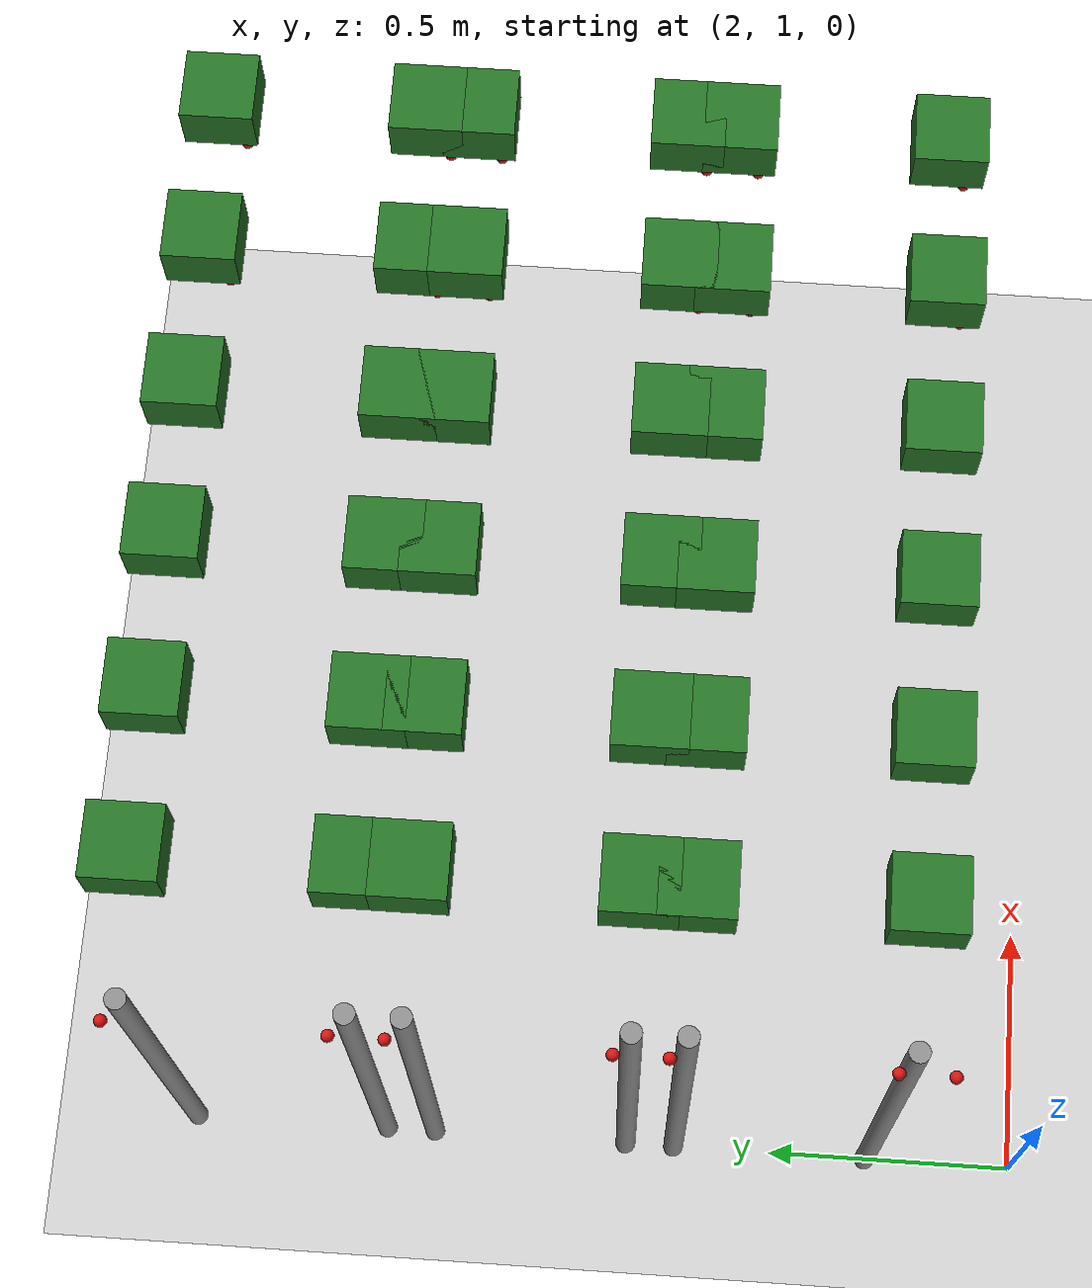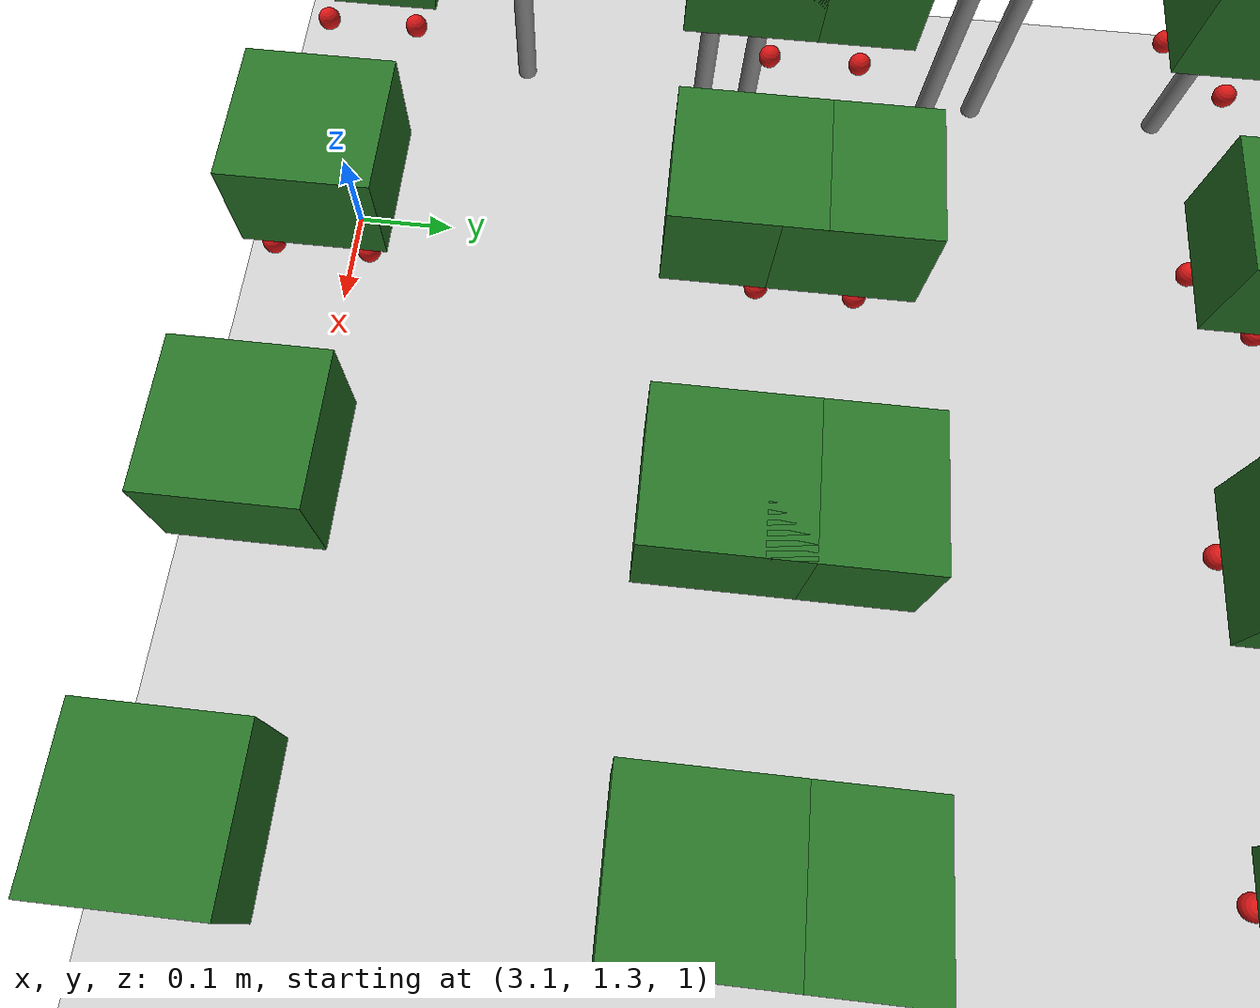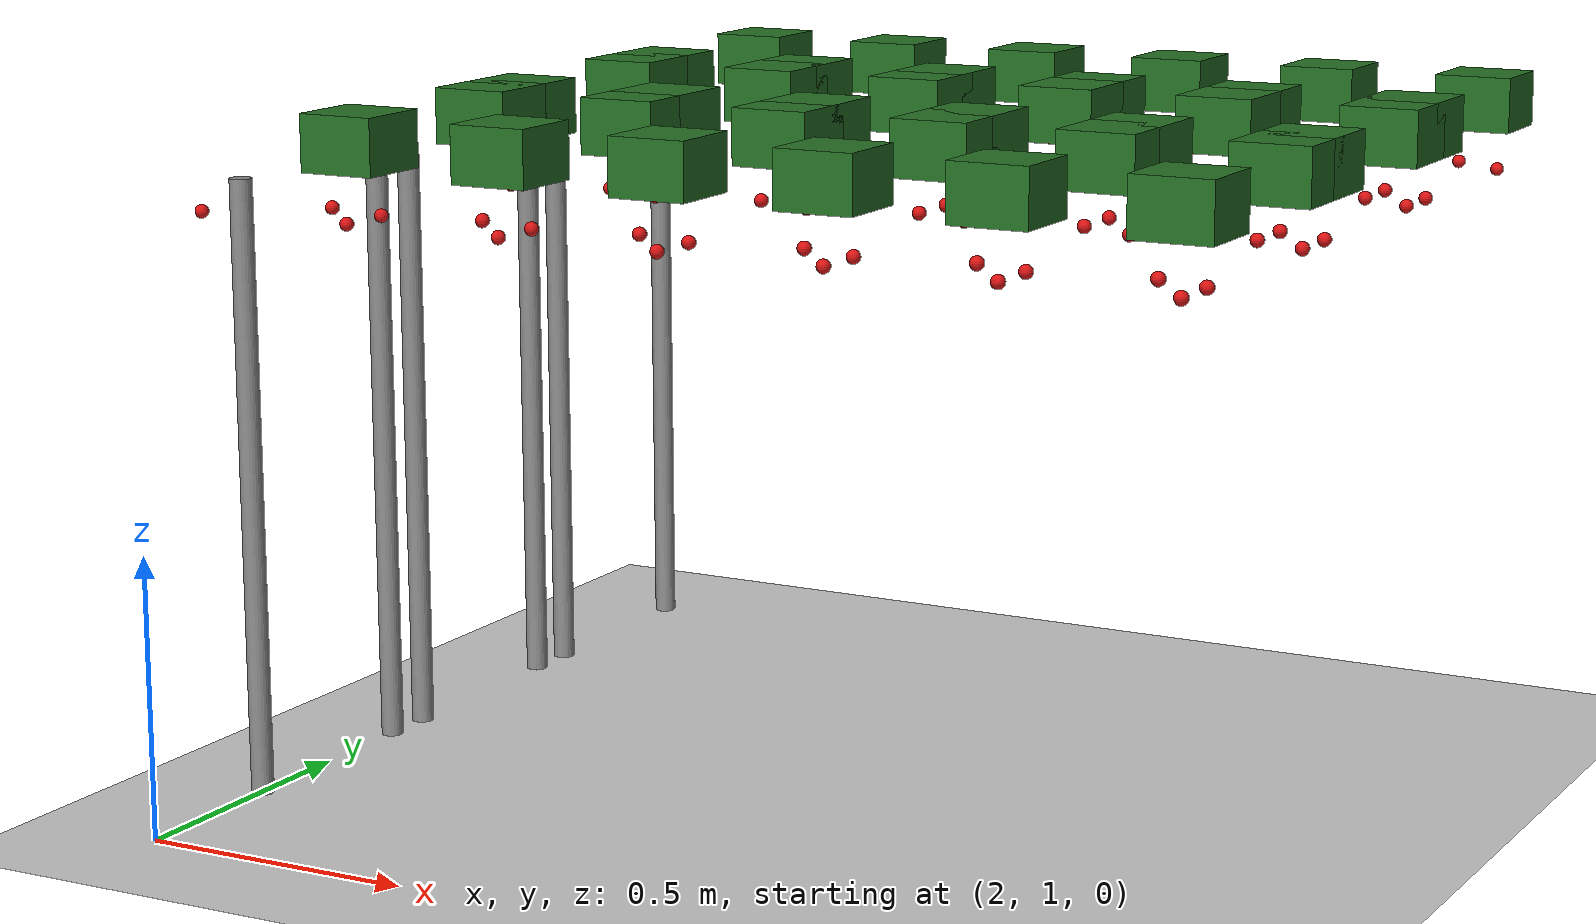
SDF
<sdf version="1.7">
 <world name="irish_polytunnel">
  <include><uri>model://sun</uri></include>
  <include><uri>model://ground_plane</uri></include>
  <model name="row2_L_plant6_berry_1">
   <static>true</static>
   <pose>1.970 1.230 1.050 0 0 0</pose>
   <link name="link">
    <visual name="visual">
     <geometry><sphere><radius>0.012</radius></sphere></geometry>
     <material><ambient>0.75 0.05 0.05 1</ambient><diffuse>0.85 0.08 0.08 1</diffuse></material>
    </visual>
   </link>
  </model>
  <model name="row2_L_plant7_berry_1">
   <static>true</static>
   <pose>2.270 1.230 1.050 0 0 0</pose>
   <link name="link">
    <visual name="visual">
     <geometry><sphere><radius>0.012</radius></sphere></geometry>
     <material><ambient>0.75 0.05 0.05 1</ambient><diffuse>0.85 0.08 0.08 1</diffuse></material>
    </visual>
   </link>
  </model>
  <model name="row2_L_plant8_berry_1">
   <static>true</static>
   <pose>2.570 1.230 1.050 0 0 0</pose>
   <link name="link">
    <visual name="visual">
     <geometry><sphere><radius>0.012</radius></sphere></geometry>
     <material><ambient>0.75 0.05 0.05 1</ambient><diffuse>0.85 0.08 0.08 1</diffuse></material>
    </visual>
   </link>
  </model>
  <model name="row2_L_plant9_berry_1">
   <static>true</static>
   <pose>2.870 1.230 1.050 0 0 0</pose>
   <link name="link">
    <visual name="visual">
     <geometry><sphere><radius>0.012</radius></sphere></geometry>
     <material><ambient>0.75 0.05 0.05 1</ambient><diffuse>0.85 0.08 0.08 1</diffuse></material>
    </visual>
   </link>
  </model>
  <model name="row2_L_plant10_berry_1">
   <static>true</static>
   <pose>3.170 1.230 1.050 0 0 0</pose>
   <link name="link">
    <visual name="visual">
     <geometry><sphere><radius>0.012</radius></sphere></geometry>
     <material><ambient>0.75 0.05 0.05 1</ambient><diffuse>0.85 0.08 0.08 1</diffuse></material>
    </visual>
   </link>
  </model>
  <model name="row2_L_plant11_berry_1">
   <static>true</static>
   <pose>3.470 1.230 1.050 0 0 0</pose>
   <link name="link">
    <visual name="visual">
     <geometry><sphere><radius>0.012</radius></sphere></geometry>
     <material><ambient>0.75 0.05 0.05 1</ambient><diffuse>0.85 0.08 0.08 1</diffuse></material>
    </visual>
   </link>
  </model>
  <model name="row2_L_plant12_berry_1">
   <static>true</static>
   <pose>3.770 1.230 1.050 0 0 0</pose>
   <link name="link">
    <visual name="visual">
     <geometry><sphere><radius>0.012</radius></sphere></geometry>
     <material><ambient>0.75 0.05 0.05 1</ambient><diffuse>0.85 0.08 0.08 1</diffuse></material>
    </visual>
   </link>
  </model>
  <model name="row3_L_post1">
   <static>true</static>
   <pose>2.000 1.700 0.550 0 0 0</pose>
   <link name="link">
    <collision name="collision">
     <geometry><cylinder><radius>0.02</radius><length>1.100</length></cylinder></geometry>
    </collision>
    <visual name="visual">
     <geometry><cylinder><radius>0.02</radius><length>1.100</length></cylinder></geometry>
     <material><ambient>0.5 0.5 0.5 1</ambient><diffuse>0.55 0.55 0.55 1</diffuse></material>
    </visual>
   </link>
  </model>
  <model name="row3_L_plant6_berry_1">
   <static>true</static>
   <pose>1.970 1.730 1.050 0 0 0</pose>
   <link name="link">
    <visual name="visual">
     <geometry><sphere><radius>0.012</radius></sphere></geometry>
     <material><ambient>0.75 0.05 0.05 1</ambient><diffuse>0.85 0.08 0.08 1</diffuse></material>
    </visual>
   </link>
  </model>
  <model name="row3_L_plant7_foliage">
   <static>true</static>
   <pose>2.250 1.700 1.180 0 0 0</pose>
   <link name="link">
    <visual name="visual">
     <geometry><box><size>0.14 0.14 0.10</size></box></geometry>
     <material><ambient>0.10 0.35 0.10 1</ambient><diffuse>0.15 0.45 0.15 1</diffuse></material>
    </visual>
   </link>
  </model>
  <model name="row3_L_plant7_berry_0">
   <static>true</static>
   <pose>2.220 1.660 1.070 0 0 0</pose>
   <link name="link">
    <visual name="visual">
     <geometry><sphere><radius>0.012</radius></sphere></geometry>
     <material><ambient>0.75 0.05 0.05 1</ambient><diffuse>0.85 0.08 0.08 1</diffuse></material>
    </visual>
   </link>
  </model>
  <model name="row3_L_plant7_berry_1">
   <static>true</static>
   <pose>2.270 1.730 1.050 0 0 0</pose>
   <link name="link">
    <visual name="visual">
     <geometry><sphere><radius>0.012</radius></sphere></geometry>
     <material><ambient>0.75 0.05 0.05 1</ambient><diffuse>0.85 0.08 0.08 1</diffuse></material>
    </visual>
   </link>
  </model>
  <model name="row3_L_plant8_foliage">
   <static>true</static>
   <pose>2.550 1.700 1.180 0 0 0</pose>
   <link name="link">
    <visual name="visual">
     <geometry><box><size>0.14 0.14 0.10</size></box></geometry>
     <material><ambient>0.10 0.35 0.10 1</ambient><diffuse>0.15 0.45 0.15 1</diffuse></material>
    </visual>
   </link>
  </model>
  <model name="row3_L_plant8_berry_0">
   <static>true</static>
   <pose>2.520 1.660 1.070 0 0 0</pose>
   <link name="link">
    <visual name="visual">
     <geometry><sphere><radius>0.012</radius></sphere></geometry>
     <material><ambient>0.75 0.05 0.05 1</ambient><diffuse>0.85 0.08 0.08 1</diffuse></material>
    </visual>
   </link>
  </model>
  <model name="row3_L_plant8_berry_1">
   <static>true</static>
   <pose>2.570 1.730 1.050 0 0 0</pose>
   <link name="link">
    <visual name="visual">
     <geometry><sphere><radius>0.012</radius></sphere></geometry>
     <material><ambient>0.75 0.05 0.05 1</ambient><diffuse>0.85 0.08 0.08 1</diffuse></material>
    </visual>
   </link>
  </model>
  <model name="row3_L_plant9_foliage">
   <static>true</static>
   <pose>2.850 1.700 1.180 0 0 0</pose>
   <link name="link">
    <visual name="visual">
     <geometry><box><size>0.14 0.14 0.10</size></box></geometry>
     <material><ambient>0.10 0.35 0.10 1</ambient><diffuse>0.15 0.45 0.15 1</diffuse></material>
    </visual>
   </link>
  </model>
  <model name="row3_L_plant9_berry_0">
   <static>true</static>
   <pose>2.820 1.660 1.070 0 0 0</pose>
   <link name="link">
    <visual name="visual">
     <geometry><sphere><radius>0.012</radius></sphere></geometry>
     <material><ambient>0.75 0.05 0.05 1</ambient><diffuse>0.85 0.08 0.08 1</diffuse></material>
    </visual>
   </link>
  </model>
  <model name="row3_L_plant9_berry_1">
   <static>true</static>
   <pose>2.870 1.730 1.050 0 0 0</pose>
   <link name="link">
    <visual name="visual">
     <geometry><sphere><radius>0.012</radius></sphere></geometry>
     <material><ambient>0.75 0.05 0.05 1</ambient><diffuse>0.85 0.08 0.08 1</diffuse></material>
    </visual>
   </link>
  </model>
  <model name="row3_L_plant10_foliage">
   <static>true</static>
   <pose>3.150 1.700 1.180 0 0 0</pose>
   <link name="link">
    <visual name="visual">
     <geometry><box><size>0.14 0.14 0.10</size></box></geometry>
     <material><ambient>0.10 0.35 0.10 1</ambient><diffuse>0.15 0.45 0.15 1</diffuse></material>
    </visual>
   </link>
  </model>
  <model name="row3_L_plant10_berry_0">
   <static>true</static>
   <pose>3.120 1.660 1.070 0 0 0</pose>
   <link name="link">
    <visual name="visual">
     <geometry><sphere><radius>0.012</radius></sphere></geometry>
     <material><ambient>0.75 0.05 0.05 1</ambient><diffuse>0.85 0.08 0.08 1</diffuse></material>
    </visual>
   </link>
  </model>
  <model name="row3_L_plant10_berry_1">
   <static>true</static>
   <pose>3.170 1.730 1.050 0 0 0</pose>
   <link name="link">
    <visual name="visual">
     <geometry><sphere><radius>0.012</radius></sphere></geometry>
     <material><ambient>0.75 0.05 0.05 1</ambient><diffuse>0.85 0.08 0.08 1</diffuse></material>
    </visual>
   </link>
  </model>
  <model name="row3_L_plant11_foliage">
   <static>true</static>
   <pose>3.450 1.700 1.180 0 0 0</pose>
   <link name="link">
    <visual name="visual">
     <geometry><box><size>0.14 0.14 0.10</size></box></geometry>
     <material><ambient>0.10 0.35 0.10 1</ambient><diffuse>0.15 0.45 0.15 1</diffuse></material>
    </visual>
   </link>
  </model>
  <model name="row3_L_plant11_berry_0">
   <static>true</static>
   <pose>3.420 1.660 1.070 0 0 0</pose>
   <link name="link">
    <visual name="visual">
     <geometry><sphere><radius>0.012</radius></sphere></geometry>
     <material><ambient>0.75 0.05 0.05 1</ambient><diffuse>0.85 0.08 0.08 1</diffuse></material>
    </visual>
   </link>
  </model>
  <model name="row3_L_plant11_berry_1">
   <static>true</static>
   <pose>3.470 1.730 1.050 0 0 0</pose>
   <link name="link">
    <visual name="visual">
     <geometry><sphere><radius>0.012</radius></sphere></geometry>
     <material><ambient>0.75 0.05 0.05 1</ambient><diffuse>0.85 0.08 0.08 1</diffuse></material>
    </visual>
   </link>
  </model>
  <model name="row3_L_plant12_foliage">
   <static>true</static>
   <pose>3.750 1.700 1.180 0 0 0</pose>
   <link name="link">
    <visual name="visual">
     <geometry><box><size>0.14 0.14 0.10</size></box></geometry>
     <material><ambient>0.10 0.35 0.10 1</ambient><diffuse>0.15 0.45 0.15 1</diffuse></material>
    </visual>
   </link>
  </model>
  <model name="row3_L_plant12_berry_0">
   <static>true</static>
   <pose>3.720 1.660 1.070 0 0 0</pose>
   <link name="link">
    <visual name="visual">
     <geometry><sphere><radius>0.012</radius></sphere></geometry>
     <material><ambient>0.75 0.05 0.05 1</ambient><diffuse>0.85 0.08 0.08 1</diffuse></material>
    </visual>
   </link>
  </model>
  <model name="row3_L_plant12_berry_1">
   <static>true</static>
   <pose>3.770 1.730 1.050 0 0 0</pose>
   <link name="link">
    <visual name="visual">
     <geometry><sphere><radius>0.012</radius></sphere></geometry>
     <material><ambient>0.75 0.05 0.05 1</ambient><diffuse>0.85 0.08 0.08 1</diffuse></material>
    </visual>
   </link>
  </model>
  <model name="row3_R_post1">
   <static>true</static>
   <pose>2.000 1.300 0.550 0 0 0</pose>
   <link name="link">
    <collision name="collision">
     <geometry><cylinder><radius>0.02</radius><length>1.100</length></cylinder></geometry>
    </collision>
    <visual name="visual">
     <geometry><cylinder><radius>0.02</radius><length>1.100</length></cylinder></geometry>
     <material><ambient>0.5 0.5 0.5 1</ambient><diffuse>0.55 0.55 0.55 1</diffuse></material>
    </visual>
   </link>
  </model>
  <model name="row3_R_plant6_berry_1">
   <static>true</static>
   <pose>1.970 1.330 1.050 0 0 0</pose>
   <link name="link">
    <visual name="visual">
     <geometry><sphere><radius>0.012</radius></sphere></geometry>
     <material><ambient>0.75 0.05 0.05 1</ambient><diffuse>0.85 0.08 0.08 1</diffuse></material>
    </visual>
   </link>
  </model>
  <model name="row3_R_plant7_foliage">
   <static>true</static>
   <pose>2.250 1.300 1.180 0 0 0</pose>
   <link name="link">
    <visual name="visual">
     <geometry><box><size>0.14 0.14 0.10</size></box></geometry>
     <material><ambient>0.10 0.35 0.10 1</ambient><diffuse>0.15 0.45 0.15 1</diffuse></material>
    </visual>
   </link>
  </model>
  <model name="row3_R_plant7_berry_0">
   <static>true</static>
   <pose>2.220 1.260 1.070 0 0 0</pose>
   <link name="link">
    <visual name="visual">
     <geometry><sphere><radius>0.012</radius></sphere></geometry>
     <material><ambient>0.75 0.05 0.05 1</ambient><diffuse>0.85 0.08 0.08 1</diffuse></material>
    </visual>
   </link>
  </model>
  <model name="row3_R_plant7_berry_1">
   <static>true</static>
   <pose>2.270 1.330 1.050 0 0 0</pose>
   <link name="link">
    <visual name="visual">
     <geometry><sphere><radius>0.012</radius></sphere></geometry>
     <material><ambient>0.75 0.05 0.05 1</ambient><diffuse>0.85 0.08 0.08 1</diffuse></material>
    </visual>
   </link>
  </model>
  <model name="row3_R_plant8_foliage">
   <static>true</static>
   <pose>2.550 1.300 1.180 0 0 0</pose>
   <link name="link">
    <visual name="visual">
     <geometry><box><size>0.14 0.14 0.10</size></box></geometry>
     <material><ambient>0.10 0.35 0.10 1</ambient><diffuse>0.15 0.45 0.15 1</diffuse></material>
    </visual>
   </link>
  </model>
  <model name="row3_R_plant8_berry_0">
   <static>true</static>
   <pose>2.520 1.260 1.070 0 0 0</pose>
   <link name="link">
    <visual name="visual">
     <geometry><sphere><radius>0.012</radius></sphere></geometry>
     <material><ambient>0.75 0.05 0.05 1</ambient><diffuse>0.85 0.08 0.08 1</diffuse></material>
    </visual>
   </link>
  </model>
  <model name="row3_R_plant8_berry_1">
   <static>true</static>
   <pose>2.570 1.330 1.050 0 0 0</pose>
   <link name="link">
    <visual name="visual">
     <geometry><sphere><radius>0.012</radius></sphere></geometry>
     <material><ambient>0.75 0.05 0.05 1</ambient><diffuse>0.85 0.08 0.08 1</diffuse></material>
    </visual>
   </link>
  </model>
  <model name="row3_R_plant9_foliage">
   <static>true</static>
   <pose>2.850 1.300 1.180 0 0 0</pose>
   <link name="link">
    <visual name="visual">
     <geometry><box><size>0.14 0.14 0.10</size></box></geometry>
     <material><ambient>0.10 0.35 0.10 1</ambient><diffuse>0.15 0.45 0.15 1</diffuse></material>
    </visual>
   </link>
  </model>
  <model name="row3_R_plant9_berry_0">
   <static>true</static>
   <pose>2.820 1.260 1.070 0 0 0</pose>
   <link name="link">
    <visual name="visual">
     <geometry><sphere><radius>0.012</radius></sphere></geometry>
     <material><ambient>0.75 0.05 0.05 1</ambient><diffuse>0.85 0.08 0.08 1</diffuse></material>
    </visual>
   </link>
  </model>
  <model name="row3_R_plant9_berry_1">
   <static>true</static>
   <pose>2.870 1.330 1.050 0 0 0</pose>
   <link name="link">
    <visual name="visual">
     <geometry><sphere><radius>0.012</radius></sphere></geometry>
     <material><ambient>0.75 0.05 0.05 1</ambient><diffuse>0.85 0.08 0.08 1</diffuse></material>
    </visual>
   </link>
  </model>
  <model name="row3_R_plant10_foliage">
   <static>true</static>
   <pose>3.150 1.300 1.180 0 0 0</pose>
   <link name="link">
    <visual name="visual">
     <geometry><box><size>0.14 0.14 0.10</size></box></geometry>
     <material><ambient>0.10 0.35 0.10 1</ambient><diffuse>0.15 0.45 0.15 1</diffuse></material>
    </visual>
   </link>
  </model>
  <model name="row3_R_plant10_berry_0">
   <static>true</static>
   <pose>3.120 1.260 1.070 0 0 0</pose>
   <link name="link">
    <visual name="visual">
     <geometry><sphere><radius>0.012</radius></sphere></geometry>
     <material><ambient>0.75 0.05 0.05 1</ambient><diffuse>0.85 0.08 0.08 1</diffuse></material>
    </visual>
   </link>
  </model>
  <model name="row3_R_plant10_berry_1">
   <static>true</static>
   <pose>3.170 1.330 1.050 0 0 0</pose>
   <link name="link">
    <visual name="visual">
     <geometry><sphere><radius>0.012</radius></sphere></geometry>
     <material><ambient>0.75 0.05 0.05 1</ambient><diffuse>0.85 0.08 0.08 1</diffuse></material>
    </visual>
   </link>
  </model>
  <model name="row3_R_plant11_foliage">
   <static>true</static>
   <pose>3.450 1.300 1.180 0 0 0</pose>
   <link name="link">
    <visual name="visual">
     <geometry><box><size>0.14 0.14 0.10</size></box></geometry>
     <material><ambient>0.10 0.35 0.10 1</ambient><diffuse>0.15 0.45 0.15 1</diffuse></material>
    </visual>
   </link>
  </model>
  <model name="row3_R_plant11_berry_0">
   <static>true</static>
   <pose>3.420 1.260 1.070 0 0 0</pose>
   <link name="link">
    <visual name="visual">
     <geometry><sphere><radius>0.012</radius></sphere></geometry>
     <material><ambient>0.75 0.05 0.05 1</ambient><diffuse>0.85 0.08 0.08 1</diffuse></material>
    </visual>
   </link>
  </model>
  <model name="row3_R_plant11_berry_1">
   <static>true</static>
   <pose>3.470 1.330 1.050 0 0 0</pose>
   <link name="link">
    <visual name="visual">
     <geometry><sphere><radius>0.012</radius></sphere></geometry>
     <material><ambient>0.75 0.05 0.05 1</ambient><diffuse>0.85 0.08 0.08 1</diffuse></material>
    </visual>
   </link>
  </model>
  <model name="row3_R_plant12_foliage">
   <static>true</static>
   <pose>3.750 1.300 1.180 0 0 0</pose>
   <link name="link">
    <visual name="visual">
     <geometry><box><size>0.14 0.14 0.10</size></box></geometry>
     <material><ambient>0.10 0.35 0.10 1</ambient><diffuse>0.15 0.45 0.15 1</diffuse></material>
    </visual>
   </link>
  </model>
  <model name="row3_R_plant12_berry_0">
   <static>true</static>
   <pose>3.720 1.260 1.070 0 0 0</pose>
   <link name="link">
    <visual name="visual">
     <geometry><sphere><radius>0.012</radius></sphere></geometry>
     <material><ambient>0.75 0.05 0.05 1</ambient><diffuse>0.85 0.08 0.08 1</diffuse></material>
    </visual>
   </link>
  </model>
  <model name="row3_R_plant12_berry_1">
   <static>true</static>
   <pose>3.770 1.330 1.050 0 0 0</pose>
   <link name="link">
    <visual name="visual">
     <geometry><sphere><radius>0.012</radius></sphere></geometry>
     <material><ambient>0.75 0.05 0.05 1</ambient><diffuse>0.85 0.08 0.08 1</diffuse></material>
    </visual>
   </link>
  </model>
  <model name="row4_L_post1">
   <static>true</static>
   <pose>2.000 2.200 0.550 0 0 0</pose>
   <link name="link">
    <collision name="collision">
     <geometry><cylinder><radius>0.02</radius><length>1.100</length></cylinder></geometry>
    </collision>
    <visual name="visual">
     <geometry><cylinder><radius>0.02</radius><length>1.100</length></cylinder></geometry>
     <material><ambient>0.5 0.5 0.5 1</ambient><diffuse>0.55 0.55 0.55 1</diffuse></material>
    </visual>
   </link>
  </model>
  <model name="row4_L_plant6_berry_1">
   <static>true</static>
   <pose>1.970 2.230 1.050 0 0 0</pose>
   <link name="link">
    <visual name="visual">
     <geometry><sphere><radius>0.012</radius></sphere></geometry>
     <material><ambient>0.75 0.05 0.05 1</ambient><diffuse>0.85 0.08 0.08 1</diffuse></material>
    </visual>
   </link>
  </model>
  <model name="row4_L_plant7_foliage">
   <static>true</static>
   <pose>2.250 2.200 1.180 0 0 0</pose>
   <link name="link">
    <visual name="visual">
     <geometry><box><size>0.14 0.14 0.10</size></box></geometry>
     <material><ambient>0.10 0.35 0.10 1</ambient><diffuse>0.15 0.45 0.15 1</diffuse></material>
    </visual>
   </link>
  </model>
  <model name="row4_L_plant7_berry_0">
   <static>true</static>
   <pose>2.220 2.160 1.070 0 0 0</pose>
   <link name="link">
    <visual name="visual">
     <geometry><sphere><radius>0.012</radius></sphere></geometry>
     <material><ambient>0.75 0.05 0.05 1</ambient><diffuse>0.85 0.08 0.08 1</diffuse></material>
    </visual>
   </link>
  </model>
  <model name="row4_L_plant7_berry_1">
   <static>true</static>
   <pose>2.270 2.230 1.050 0 0 0</pose>
   <link name="link">
    <visual name="visual">
     <geometry><sphere><radius>0.012</radius></sphere></geometry>
     <material><ambient>0.75 0.05 0.05 1</ambient><diffuse>0.85 0.08 0.08 1</diffuse></material>
    </visual>
   </link>
  </model>
  <model name="row4_L_plant8_foliage">
   <static>true</static>
   <pose>2.550 2.200 1.180 0 0 0</pose>
   <link name="link">
    <visual name="visual">
     <geometry><box><size>0.14 0.14 0.10</size></box></geometry>
     <material><ambient>0.10 0.35 0.10 1</ambient><diffuse>0.15 0.45 0.15 1</diffuse></material>
    </visual>
   </link>
  </model>
  <model name="row4_L_plant8_berry_0">
   <static>true</static>
   <pose>2.520 2.160 1.070 0 0 0</pose>
   <link name="link">
    <visual name="visual">
     <geometry><sphere><radius>0.012</radius></sphere></geometry>
     <material><ambient>0.75 0.05 0.05 1</ambient><diffuse>0.85 0.08 0.08 1</diffuse></material>
    </visual>
   </link>
  </model>
  <model name="row4_L_plant8_berry_1">
   <static>true</static>
   <pose>2.570 2.230 1.050 0 0 0</pose>
   <link name="link">
    <visual name="visual">
     <geometry><sphere><radius>0.012</radius></sphere></geometry>
     <material><ambient>0.75 0.05 0.05 1</ambient><diffuse>0.85 0.08 0.08 1</diffuse></material>
    </visual>
   </link>
  </model>
  <model name="row4_L_plant9_foliage">
   <static>true</static>
   <pose>2.850 2.200 1.180 0 0 0</pose>
   <link name="link">
    <visual name="visual">
     <geometry><box><size>0.14 0.14 0.10</size></box></geometry>
     <material><ambient>0.10 0.35 0.10 1</ambient><diffuse>0.15 0.45 0.15 1</diffuse></material>
    </visual>
   </link>
  </model>
  <model name="row4_L_plant9_berry_0">
   <static>true</static>
   <pose>2.820 2.160 1.070 0 0 0</pose>
   <link name="link">
    <visual name="visual">
     <geometry><sphere><radius>0.012</radius></sphere></geometry>
     <material><ambient>0.75 0.05 0.05 1</ambient><diffuse>0.85 0.08 0.08 1</diffuse></material>
    </visual>
   </link>
  </model>
  <model name="row4_L_plant9_berry_1">
   <static>true</static>
   <pose>2.870 2.230 1.050 0 0 0</pose>
   <link name="link">
    <visual name="visual">
     <geometry><sphere><radius>0.012</radius></sphere></geometry>
     <material><ambient>0.75 0.05 0.05 1</ambient><diffuse>0.85 0.08 0.08 1</diffuse></material>
    </visual>
   </link>
  </model>
  <model name="row4_L_plant10_foliage">
   <static>true</static>
   <pose>3.150 2.200 1.180 0 0 0</pose>
   <link name="link">
    <visual name="visual">
     <geometry><box><size>0.14 0.14 0.10</size></box></geometry>
     <material><ambient>0.10 0.35 0.10 1</ambient><diffuse>0.15 0.45 0.15 1</diffuse></material>
    </visual>
   </link>
  </model>
  <model name="row4_L_plant10_berry_0">
   <static>true</static>
   <pose>3.120 2.160 1.070 0 0 0</pose>
   <link name="link">
    <visual name="visual">
     <geometry><sphere><radius>0.012</radius></sphere></geometry>
     <material><ambient>0.75 0.05 0.05 1</ambient><diffuse>0.85 0.08 0.08 1</diffuse></material>
    </visual>
   </link>
  </model>
  <model name="row4_L_plant10_berry_1">
   <static>true</static>
   <pose>3.170 2.230 1.050 0 0 0</pose>
   <link name="link">
    <visual name="visual">
     <geometry><sphere><radius>0.012</radius></sphere></geometry>
     <material><ambient>0.75 0.05 0.05 1</ambient><diffuse>0.85 0.08 0.08 1</diffuse></material>
    </visual>
   </link>
  </model>
  <model name="row4_L_plant11_foliage">
   <static>true</static>
   <pose>3.450 2.200 1.180 0 0 0</pose>
   <link name="link">
    <visual name="visual">
     <geometry><box><size>0.14 0.14 0.10</size></box></geometry>
     <material><ambient>0.10 0.35 0.10 1</ambient><diffuse>0.15 0.45 0.15 1</diffuse></material>
    </visual>
   </link>
  </model>
  <model name="row4_L_plant11_berry_0">
   <static>true</static>
   <pose>3.420 2.160 1.070 0 0 0</pose>
   <link name="link">
    <visual name="visual">
     <geometry><sphere><radius>0.012</radius></sphere></geometry>
     <material><ambient>0.75 0.05 0.05 1</ambient><diffuse>0.85 0.08 0.08 1</diffuse></material>
    </visual>
   </link>
  </model>
  <model name="row4_L_plant11_berry_1">
   <static>true</static>
   <pose>3.470 2.230 1.050 0 0 0</pose>
   <link name="link">
    <visual name="visual">
     <geometry><sphere><radius>0.012</radius></sphere></geometry>
     <material><ambient>0.75 0.05 0.05 1</ambient><diffuse>0.85 0.08 0.08 1</diffuse></material>
    </visual>
   </link>
  </model>
  <model name="row4_L_plant12_foliage">
   <static>true</static>
   <pose>3.750 2.200 1.180 0 0 0</pose>
   <link name="link">
    <visual name="visual">
     <geometry><box><size>0.14 0.14 0.10</size></box></geometry>
     <material><ambient>0.10 0.35 0.10 1</ambient><diffuse>0.15 0.45 0.15 1</diffuse></material>
    </visual>
   </link>
  </model>
  <model name="row4_L_plant12_berry_0">
   <static>true</static>
   <pose>3.720 2.160 1.070 0 0 0</pose>
   <link name="link">
    <visual name="visual">
     <geometry><sphere><radius>0.012</radius></sphere></geometry>
     <material><ambient>0.75 0.05 0.05 1</ambient><diffuse>0.85 0.08 0.08 1</diffuse></material>
    </visual>
   </link>
  </model>
  <model name="row4_L_plant12_berry_1">
   <static>true</static>
   <pose>3.770 2.230 1.050 0 0 0</pose>
   <link name="link">
    <visual name="visual">
     <geometry><sphere><radius>0.012</radius></sphere></geometry>
     <material><ambient>0.75 0.05 0.05 1</ambient><diffuse>0.85 0.08 0.08 1</diffuse></material>
    </visual>
   </link>
  </model>
  <model name="row4_R_post1">
   <static>true</static>
   <pose>2.000 1.800 0.550 0 0 0</pose>
   <link name="link">
    <collision name="collision">
     <geometry><cylinder><radius>0.02</radius><length>1.100</length></cylinder></geometry>
    </collision>
    <visual name="visual">
     <geometry><cylinder><radius>0.02</radius><length>1.100</length></cylinder></geometry>
     <material><ambient>0.5 0.5 0.5 1</ambient><diffuse>0.55 0.55 0.55 1</diffuse></material>
    </visual>
   </link>
  </model>
  <model name="row4_R_plant6_berry_1">
   <static>true</static>
   <pose>1.970 1.830 1.050 0 0 0</pose>
   <link name="link">
    <visual name="visual">
     <geometry><sphere><radius>0.012</radius></sphere></geometry>
     <material><ambient>0.75 0.05 0.05 1</ambient><diffuse>0.85 0.08 0.08 1</diffuse></material>
    </visual>
   </link>
  </model>
  <model name="row4_R_plant7_foliage">
   <static>true</static>
   <pose>2.250 1.800 1.180 0 0 0</pose>
   <link name="link">
    <visual name="visual">
     <geometry><box><size>0.14 0.14 0.10</size></box></geometry>
     <material><ambient>0.10 0.35 0.10 1</ambient><diffuse>0.15 0.45 0.15 1</diffuse></material>
    </visual>
   </link>
  </model>
  <model name="row4_R_plant7_berry_0">
   <static>true</static>
   <pose>2.220 1.760 1.070 0 0 0</pose>
   <link name="link">
    <visual name="visual">
     <geometry><sphere><radius>0.012</radius></sphere></geometry>
     <material><ambient>0.75 0.05 0.05 1</ambient><diffuse>0.85 0.08 0.08 1</diffuse></material>
    </visual>
   </link>
  </model>
  <model name="row4_R_plant7_berry_1">
   <static>true</static>
   <pose>2.270 1.830 1.050 0 0 0</pose>
   <link name="link">
    <visual name="visual">
     <geometry><sphere><radius>0.012</radius></sphere></geometry>
     <material><ambient>0.75 0.05 0.05 1</ambient><diffuse>0.85 0.08 0.08 1</diffuse></material>
    </visual>
   </link>
  </model>
  <model name="row4_R_plant8_foliage">
   <static>true</static>
   <pose>2.550 1.800 1.180 0 0 0</pose>
   <link name="link">
    <visual name="visual">
     <geometry><box><size>0.14 0.14 0.10</size></box></geometry>
     <material><ambient>0.10 0.35 0.10 1</ambient><diffuse>0.15 0.45 0.15 1</diffuse></material>
    </visual>
   </link>
  </model>
  <model name="row4_R_plant8_berry_0">
   <static>true</static>
   <pose>2.520 1.760 1.070 0 0 0</pose>
   <link name="link">
    <visual name="visual">
     <geometry><sphere><radius>0.012</radius></sphere></geometry>
     <material><ambient>0.75 0.05 0.05 1</ambient><diffuse>0.85 0.08 0.08 1</diffuse></material>
    </visual>
   </link>
  </model>
  <model name="row4_R_plant8_berry_1">
   <static>true</static>
   <pose>2.570 1.830 1.050 0 0 0</pose>
   <link name="link">
    <visual name="visual">
     <geometry><sphere><radius>0.012</radius></sphere></geometry>
     <material><ambient>0.75 0.05 0.05 1</ambient><diffuse>0.85 0.08 0.08 1</diffuse></material>
    </visual>
   </link>
  </model>
  <model name="row4_R_plant9_foliage">
   <static>true</static>
   <pose>2.850 1.800 1.180 0 0 0</pose>
   <link name="link">
    <visual name="visual">
     <geometry><box><size>0.14 0.14 0.10</size></box></geometry>
     <material><ambient>0.10 0.35 0.10 1</ambient><diffuse>0.15 0.45 0.15 1</diffuse></material>
    </visual>
   </link>
  </model>
  <model name="row4_R_plant9_berry_0">
   <static>true</static>
   <pose>2.820 1.760 1.070 0 0 0</pose>
   <link name="link">
    <visual name="visual">
     <geometry><sphere><radius>0.012</radius></sphere></geometry>
     <material><ambient>0.75 0.05 0.05 1</ambient><diffuse>0.85 0.08 0.08 1</diffuse></material>
    </visual>
   </link>
  </model>
  <model name="row4_R_plant9_berry_1">
   <static>true</static>
   <pose>2.870 1.830 1.050 0 0 0</pose>
   <link name="link">
    <visual name="visual">
     <geometry><sphere><radius>0.012</radius></sphere></geometry>
     <material><ambient>0.75 0.05 0.05 1</ambient><diffuse>0.85 0.08 0.08 1</diffuse></material>
    </visual>
   </link>
  </model>
  <model name="row4_R_plant10_foliage">
   <static>true</static>
   <pose>3.150 1.800 1.180 0 0 0</pose>
   <link name="link">
    <visual name="visual">
     <geometry><box><size>0.14 0.14 0.10</size></box></geometry>
     <material><ambient>0.10 0.35 0.10 1</ambient><diffuse>0.15 0.45 0.15 1</diffuse></material>
    </visual>
   </link>
  </model>
  <model name="row4_R_plant10_berry_0">
   <static>true</static>
   <pose>3.120 1.760 1.070 0 0 0</pose>
   <link name="link">
    <visual name="visual">
     <geometry><sphere><radius>0.012</radius></sphere></geometry>
     <material><ambient>0.75 0.05 0.05 1</ambient><diffuse>0.85 0.08 0.08 1</diffuse></material>
    </visual>
   </link>
  </model>
  <model name="row4_R_plant10_berry_1">
   <static>true</static>
   <pose>3.170 1.830 1.050 0 0 0</pose>
   <link name="link">
    <visual name="visual">
     <geometry><sphere><radius>0.012</radius></sphere></geometry>
     <material><ambient>0.75 0.05 0.05 1</ambient><diffuse>0.85 0.08 0.08 1</diffuse></material>
    </visual>
   </link>
  </model>
  <model name="row4_R_plant11_foliage">
   <static>true</static>
   <pose>3.450 1.800 1.180 0 0 0</pose>
   <link name="link">
    <visual name="visual">
     <geometry><box><size>0.14 0.14 0.10</size></box></geometry>
     <material><ambient>0.10 0.35 0.10 1</ambient><diffuse>0.15 0.45 0.15 1</diffuse></material>
    </visual>
   </link>
  </model>
  <model name="row4_R_plant11_berry_0">
   <static>true</static>
   <pose>3.420 1.760 1.070 0 0 0</pose>
   <link name="link">
    <visual name="visual">
     <geometry><sphere><radius>0.012</radius></sphere></geometry>
     <material><ambient>0.75 0.05 0.05 1</ambient><diffuse>0.85 0.08 0.08 1</diffuse></material>
    </visual>
   </link>
  </model>
  <model name="row4_R_plant11_berry_1">
   <static>true</static>
   <pose>3.470 1.830 1.050 0 0 0</pose>
   <link name="link">
    <visual name="visual">
     <geometry><sphere><radius>0.012</radius></sphere></geometry>
     <material><ambient>0.75 0.05 0.05 1</ambient><diffuse>0.85 0.08 0.08 1</diffuse></material>
    </visual>
   </link>
  </model>
  <model name="row4_R_plant12_foliage">
   <static>true</static>
   <pose>3.750 1.800 1.180 0 0 0</pose>
   <link name="link">
    <visual name="visual">
     <geometry><box><size>0.14 0.14 0.10</size></box></geometry>
     <material><ambient>0.10 0.35 0.10 1</ambient><diffuse>0.15 0.45 0.15 1</diffuse></material>
    </visual>
   </link>
  </model>
  <model name="row4_R_plant12_berry_0">
   <static>true</static>
   <pose>3.720 1.760 1.070 0 0 0</pose>
   <link name="link">
    <visual name="visual">
     <geometry><sphere><radius>0.012</radius></sphere></geometry>
     <material><ambient>0.75 0.05 0.05 1</ambient><diffuse>0.85 0.08 0.08 1</diffuse></material>
    </visual>
   </link>
  </model>
  <model name="row4_R_plant12_berry_1">
   <static>true</static>
   <pose>3.770 1.830 1.050 0 0 0</pose>
   <link name="link">
    <visual name="visual">
     <geometry><sphere><radius>0.012</radius></sphere></geometry>
     <material><ambient>0.75 0.05 0.05 1</ambient><diffuse>0.85 0.08 0.08 1</diffuse></material>
    </visual>
   </link>
  </model>
  <model name="row5_L_post1">
   <static>true</static>
   <pose>2.000 2.700 0.550 0 0 0</pose>
   <link name="link">
    <collision name="collision">
     <geometry><cylinder><radius>0.02</radius><length>1.100</length></cylinder></geometry>
    </collision>
    <visual name="visual">
     <geometry><cylinder><radius>0.02</radius><length>1.100</length></cylinder></geometry>
     <material><ambient>0.5 0.5 0.5 1</ambient><diffuse>0.55 0.55 0.55 1</diffuse></material>
    </visual>
   </link>
  </model>
  <model name="row5_L_plant6_berry_1">
   <static>true</static>
   <pose>1.970 2.730 1.050 0 0 0</pose>
   <link name="link">
    <visual name="visual">
     <geometry><sphere><radius>0.012</radius></sphere></geometry>
     <material><ambient>0.75 0.05 0.05 1</ambient><diffuse>0.85 0.08 0.08 1</diffuse></material>
    </visual>
   </link>
  </model>
  <model name="row5_L_plant7_foliage">
   <static>true</static>
   <pose>2.250 2.700 1.180 0 0 0</pose>
   <link name="link">
    <visual name="visual">
     <geometry><box><size>0.14 0.14 0.10</size></box></geometry>
     <material><ambient>0.10 0.35 0.10 1</ambient><diffuse>0.15 0.45 0.15 1</diffuse></material>
    </visual>
   </link>
  </model>
  <model name="row5_L_plant7_berry_0">
   <static>true</static>
   <pose>2.220 2.660 1.070 0 0 0</pose>
   <link name="link">
    <visual name="visual">
     <geometry><sphere><radius>0.012</radius></sphere></geometry>
     <material><ambient>0.75 0.05 0.05 1</ambient><diffuse>0.85 0.08 0.08 1</diffuse></material>
    </visual>
   </link>
  </model>
  <model name="row5_L_plant7_berry_1">
   <static>true</static>
   <pose>2.270 2.730 1.050 0 0 0</pose>
   <link name="link">
    <visual name="visual">
     <geometry><sphere><radius>0.012</radius></sphere></geometry>
     <material><ambient>0.75 0.05 0.05 1</ambient><diffuse>0.85 0.08 0.08 1</diffuse></material>
    </visual>
   </link>
  </model>
  <model name="row5_L_plant8_foliage">
   <static>true</static>
   <pose>2.550 2.700 1.180 0 0 0</pose>
   <link name="link">
    <visual name="visual">
     <geometry><box><size>0.14 0.14 0.10</size></box></geometry>
     <material><ambient>0.10 0.35 0.10 1</ambient><diffuse>0.15 0.45 0.15 1</diffuse></material>
    </visual>
   </link>
  </model>
  <model name="row5_L_plant8_berry_0">
   <static>true</static>
   <pose>2.520 2.660 1.070 0 0 0</pose>
   <link name="link">
    <visual name="visual">
     <geometry><sphere><radius>0.012</radius></sphere></geometry>
     <material><ambient>0.75 0.05 0.05 1</ambient><diffuse>0.85 0.08 0.08 1</diffuse></material>
    </visual>
   </link>
  </model>
  <model name="row5_L_plant8_berry_1">
   <static>true</static>
   <pose>2.570 2.730 1.050 0 0 0</pose>
   <link name="link">
    <visual name="visual">
     <geometry><sphere><radius>0.012</radius></sphere></geometry>
     <material><ambient>0.75 0.05 0.05 1</ambient><diffuse>0.85 0.08 0.08 1</diffuse></material>
    </visual>
   </link>
  </model>
  <model name="row5_L_plant9_foliage">
   <static>true</static>
   <pose>2.850 2.700 1.180 0 0 0</pose>
   <link name="link">
    <visual name="visual">
     <geometry><box><size>0.14 0.14 0.10</size></box></geometry>
     <material><ambient>0.10 0.35 0.10 1</ambient><diffuse>0.15 0.45 0.15 1</diffuse></material>
    </visual>
   </link>
  </model>
  <model name="row5_L_plant9_berry_0">
   <static>true</static>
   <pose>2.820 2.660 1.070 0 0 0</pose>
   <link name="link">
    <visual name="visual">
     <geometry><sphere><radius>0.012</radius></sphere></geometry>
     <material><ambient>0.75 0.05 0.05 1</ambient><diffuse>0.85 0.08 0.08 1</diffuse></material>
    </visual>
   </link>
  </model>
  <model name="row5_L_plant9_berry_1">
   <static>true</static>
   <pose>2.870 2.730 1.050 0 0 0</pose>
   <link name="link">
    <visual name="visual">
     <geometry><sphere><radius>0.012</radius></sphere></geometry>
     <material><ambient>0.75 0.05 0.05 1</ambient><diffuse>0.85 0.08 0.08 1</diffuse></material>
    </visual>
   </link>
  </model>
  <model name="row5_L_plant10_foliage">
   <static>true</static>
   <pose>3.150 2.700 1.180 0 0 0</pose>
   <link name="link">
    <visual name="visual">
     <geometry><box><size>0.14 0.14 0.10</size></box></geometry>
     <material><ambient>0.10 0.35 0.10 1</ambient><diffuse>0.15 0.45 0.15 1</diffuse></material>
    </visual>
   </link>
  </model>
  <model name="row5_L_plant10_berry_0">
   <static>true</static>
   <pose>3.120 2.660 1.070 0 0 0</pose>
   <link name="link">
    <visual name="visual">
     <geometry><sphere><radius>0.012</radius></sphere></geometry>
     <material><ambient>0.75 0.05 0.05 1</ambient><diffuse>0.85 0.08 0.08 1</diffuse></material>
    </visual>
   </link>
  </model>
  <model name="row5_L_plant10_berry_1">
   <static>true</static>
   <pose>3.170 2.730 1.050 0 0 0</pose>
   <link name="link">
    <visual name="visual">
     <geometry><sphere><radius>0.012</radius></sphere></geometry>
     <material><ambient>0.75 0.05 0.05 1</ambient><diffuse>0.85 0.08 0.08 1</diffuse></material>
    </visual>
   </link>
  </model>
  <model name="row5_L_plant11_foliage">
   <static>true</static>
   <pose>3.450 2.700 1.180 0 0 0</pose>
   <link name="link">
    <visual name="visual">
     <geometry><box><size>0.14 0.14 0.10</size></box></geometry>
     <material><ambient>0.10 0.35 0.10 1</ambient><diffuse>0.15 0.45 0.15 1</diffuse></material>
    </visual>
   </link>
  </model>
  <model name="row5_L_plant11_berry_0">
   <static>true</static>
   <pose>3.420 2.660 1.070 0 0 0</pose>
   <link name="link">
    <visual name="visual">
     <geometry><sphere><radius>0.012</radius></sphere></geometry>
     <material><ambient>0.75 0.05 0.05 1</ambient><diffuse>0.85 0.08 0.08 1</diffuse></material>
    </visual>
   </link>
  </model>
  <model name="row5_L_plant11_berry_1">
   <static>true</static>
   <pose>3.470 2.730 1.050 0 0 0</pose>
   <link name="link">
    <visual name="visual">
     <geometry><sphere><radius>0.012</radius></sphere></geometry>
     <material><ambient>0.75 0.05 0.05 1</ambient><diffuse>0.85 0.08 0.08 1</diffuse></material>
    </visual>
   </link>
  </model>
  <model name="row5_L_plant12_foliage">
   <static>true</static>
   <pose>3.750 2.700 1.180 0 0 0</pose>
   <link name="link">
    <visual name="visual">
     <geometry><box><size>0.14 0.14 0.10</size></box></geometry>
     <material><ambient>0.10 0.35 0.10 1</ambient><diffuse>0.15 0.45 0.15 1</diffuse></material>
    </visual>
   </link>
  </model>
  <model name="row5_L_plant12_berry_0">
   <static>true</static>
   <pose>3.720 2.660 1.070 0 0 0</pose>
   <link name="link">
    <visual name="visual">
     <geometry><sphere><radius>0.012</radius></sphere></geometry>
     <material><ambient>0.75 0.05 0.05 1</ambient><diffuse>0.85 0.08 0.08 1</diffuse></material>
    </visual>
   </link>
  </model>
  <model name="row5_L_plant12_berry_1">
   <static>true</static>
   <pose>3.770 2.730 1.050 0 0 0</pose>
   <link name="link">
    <visual name="visual">
     <geometry><sphere><radius>0.012</radius></sphere></geometry>
     <material><ambient>0.75 0.05 0.05 1</ambient><diffuse>0.85 0.08 0.08 1</diffuse></material>
    </visual>
   </link>
  </model>
  <model name="row5_R_post1">
   <static>true</static>
   <pose>2.000 2.300 0.550 0 0 0</pose>
   <link name="link">
    <collision name="collision">
     <geometry><cylinder><radius>0.02</radius><length>1.100</length></cylinder></geometry>
    </collision>
    <visual name="visual">
     <geometry><cylinder><radius>0.02</radius><length>1.100</length></cylinder></geometry>
     <material><ambient>0.5 0.5 0.5 1</ambient><diffuse>0.55 0.55 0.55 1</diffuse></material>
    </visual>
   </link>
  </model>
  <model name="row5_R_plant6_berry_1">
   <static>true</static>
   <pose>1.970 2.330 1.050 0 0 0</pose>
   <link name="link">
    <visual name="visual">
     <geometry><sphere><radius>0.012</radius></sphere></geometry>
     <material><ambient>0.75 0.05 0.05 1</ambient><diffuse>0.85 0.08 0.08 1</diffuse></material>
    </visual>
   </link>
  </model>
  <model name="row5_R_plant7_foliage">
   <static>true</static>
   <pose>2.250 2.300 1.180 0 0 0</pose>
   <link name="link">
    <visual name="visual">
     <geometry><box><size>0.14 0.14 0.10</size></box></geometry>
     <material><ambient>0.10 0.35 0.10 1</ambient><diffuse>0.15 0.45 0.15 1</diffuse></material>
    </visual>
   </link>
  </model>
  <model name="row5_R_plant7_berry_0">
   <static>true</static>
   <pose>2.220 2.260 1.070 0 0 0</pose>
   <link name="link">
    <visual name="visual">
     <geometry><sphere><radius>0.012</radius></sphere></geometry>
     <material><ambient>0.75 0.05 0.05 1</ambient><diffuse>0.85 0.08 0.08 1</diffuse></material>
    </visual>
   </link>
  </model>
  <model name="row5_R_plant7_berry_1">
   <static>true</static>
   <pose>2.270 2.330 1.050 0 0 0</pose>
   <link name="link">
    <visual name="visual">
     <geometry><sphere><radius>0.012</radius></sphere></geometry>
     <material><ambient>0.75 0.05 0.05 1</ambient><diffuse>0.85 0.08 0.08 1</diffuse></material>
    </visual>
   </link>
  </model>
  <model name="row5_R_plant8_foliage">
   <static>true</static>
   <pose>2.550 2.300 1.180 0 0 0</pose>
   <link name="link">
    <visual name="visual">
     <geometry><box><size>0.14 0.14 0.10</size></box></geometry>
     <material><ambient>0.10 0.35 0.10 1</ambient><diffuse>0.15 0.45 0.15 1</diffuse></material>
    </visual>
   </link>
  </model>
  <model name="row5_R_plant8_berry_0">
   <static>true</static>
   <pose>2.520 2.260 1.070 0 0 0</pose>
   <link name="link">
    <visual name="visual">
     <geometry><sphere><radius>0.012</radius></sphere></geometry>
     <material><ambient>0.75 0.05 0.05 1</ambient><diffuse>0.85 0.08 0.08 1</diffuse></material>
    </visual>
   </link>
  </model>
  <model name="row5_R_plant8_berry_1">
   <static>true</static>
   <pose>2.570 2.330 1.050 0 0 0</pose>
   <link name="link">
    <visual name="visual">
     <geometry><sphere><radius>0.012</radius></sphere></geometry>
     <material><ambient>0.75 0.05 0.05 1</ambient><diffuse>0.85 0.08 0.08 1</diffuse></material>
    </visual>
   </link>
  </model>
  <model name="row5_R_plant9_foliage">
   <static>true</static>
   <pose>2.850 2.300 1.180 0 0 0</pose>
   <link name="link">
    <visual name="visual">
     <geometry><box><size>0.14 0.14 0.10</size></box></geometry>
     <material><ambient>0.10 0.35 0.10 1</ambient><diffuse>0.15 0.45 0.15 1</diffuse></material>
    </visual>
   </link>
  </model>
  <model name="row5_R_plant9_berry_0">
   <static>true</static>
   <pose>2.820 2.260 1.070 0 0 0</pose>
   <link name="link">
    <visual name="visual">
     <geometry><sphere><radius>0.012</radius></sphere></geometry>
     <material><ambient>0.75 0.05 0.05 1</ambient><diffuse>0.85 0.08 0.08 1</diffuse></material>
    </visual>
   </link>
  </model>
  <model name="row5_R_plant9_berry_1">
   <static>true</static>
   <pose>2.870 2.330 1.050 0 0 0</pose>
   <link name="link">
    <visual name="visual">
     <geometry><sphere><radius>0.012</radius></sphere></geometry>
     <material><ambient>0.75 0.05 0.05 1</ambient><diffuse>0.85 0.08 0.08 1</diffuse></material>
    </visual>
   </link>
  </model>
  <model name="row5_R_plant10_foliage">
   <static>true</static>
   <pose>3.150 2.300 1.180 0 0 0</pose>
   <link name="link">
    <visual name="visual">
     <geometry><box><size>0.14 0.14 0.10</size></box></geometry>
     <material><ambient>0.10 0.35 0.10 1</ambient><diffuse>0.15 0.45 0.15 1</diffuse></material>
    </visual>
   </link>
  </model>
  <model name="row5_R_plant10_berry_0">
   <static>true</static>
   <pose>3.120 2.260 1.070 0 0 0</pose>
   <link name="link">
    <visual name="visual">
     <geometry><sphere><radius>0.012</radius></sphere></geometry>
     <material><ambient>0.75 0.05 0.05 1</ambient><diffuse>0.85 0.08 0.08 1</diffuse></material>
    </visual>
   </link>
  </model>
  <model name="row5_R_plant10_berry_1">
   <static>true</static>
   <pose>3.170 2.330 1.050 0 0 0</pose>
   <link name="link">
    <visual name="visual">
     <geometry><sphere><radius>0.012</radius></sphere></geometry>
     <material><ambient>0.75 0.05 0.05 1</ambient><diffuse>0.85 0.08 0.08 1</diffuse></material>
    </visual>
   </link>
  </model>
  <model name="row5_R_plant11_foliage">
   <static>true</static>
   <pose>3.450 2.300 1.180 0 0 0</pose>
   <link name="link">
    <visual name="visual">
     <geometry><box><size>0.14 0.14 0.10</size></box></geometry>
     <material><ambient>0.10 0.35 0.10 1</ambient><diffuse>0.15 0.45 0.15 1</diffuse></material>
    </visual>
   </link>
  </model>
  <model name="row5_R_plant11_berry_0">
   <static>true</static>
   <pose>3.420 2.260 1.070 0 0 0</pose>
   <link name="link">
    <visual name="visual">
     <geometry><sphere><radius>0.012</radius></sphere></geometry>
     <material><ambient>0.75 0.05 0.05 1</ambient><diffuse>0.85 0.08 0.08 1</diffuse></material>
    </visual>
   </link>
  </model>
  <model name="row5_R_plant11_berry_1">
   <static>true</static>
   <pose>3.470 2.330 1.050 0 0 0</pose>
   <link name="link">
    <visual name="visual">
     <geometry><sphere><radius>0.012</radius></sphere></geometry>
     <material><ambient>0.75 0.05 0.05 1</ambient><diffuse>0.85 0.08 0.08 1</diffuse></material>
    </visual>
   </link>
  </model>
  <model name="row5_R_plant12_foliage">
   <static>true</static>
   <pose>3.750 2.300 1.180 0 0 0</pose>
   <link name="link">
    <visual name="visual">
     <geometry><box><size>0.14 0.14 0.10</size></box></geometry>
     <material><ambient>0.10 0.35 0.10 1</ambient><diffuse>0.15 0.45 0.15 1</diffuse></material>
    </visual>
   </link>
  </model>
  <model name="row5_R_plant12_berry_0">
   <static>true</static>
   <pose>3.720 2.260 1.070 0 0 0</pose>
   <link name="link">
    <visual name="visual">
     <geometry><sphere><radius>0.012</radius></sphere></geometry>
     <material><ambient>0.75 0.05 0.05 1</ambient><diffuse>0.85 0.08 0.08 1</diffuse></material>
    </visual>
   </link>
  </model>
  <model name="row5_R_plant12_berry_1">
   <static>true</static>
   <pose>3.770 2.330 1.050 0 0 0</pose>
   <link name="link">
    <visual name="visual">
     <geometry><sphere><radius>0.012</radius></sphere></geometry>
     <material><ambient>0.75 0.05 0.05 1</ambient><diffuse>0.85 0.08 0.08 1</diffuse></material>
    </visual>
   </link>
  </model>
 </world>
</sdf>
